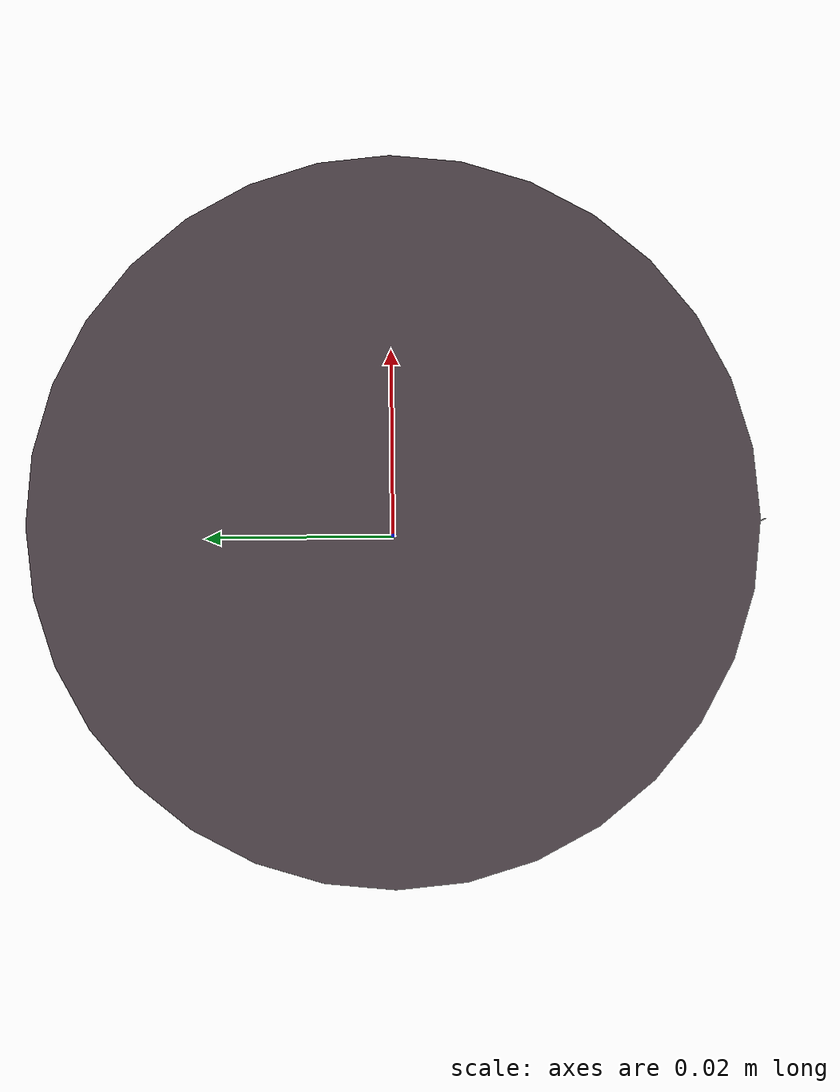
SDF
<?xml version="1.0"?>
<sdf version="1.5">
  <model name="beer">
    <link name="link">
      <pose>0 0 0 0 0 0</pose>
      <inertial>
        <mass>0.390</mass>
        <inertia>
          <ixx>0.00058</ixx>
          <ixy>0</ixy>
          <ixz>0</ixz>
          <iyy>0.00058</iyy>
          <iyz>0</iyz>
          <izz>0.00019</izz>
        </inertia>
      </inertial>
      <collision name="collision">
        <geometry>
          <box>
            <size>0.050 0.050 0.15</size>
          </box>
        </geometry>
      </collision>
      <visual name="visual">
        <geometry>
          <mesh>
            <uri>model://beer/meshes/beer.dae</uri>
            <scale>0.5 0.5 0.5</scale>
          </mesh>
        </geometry>
      </visual>
    </link>
  </model>
</sdf>
